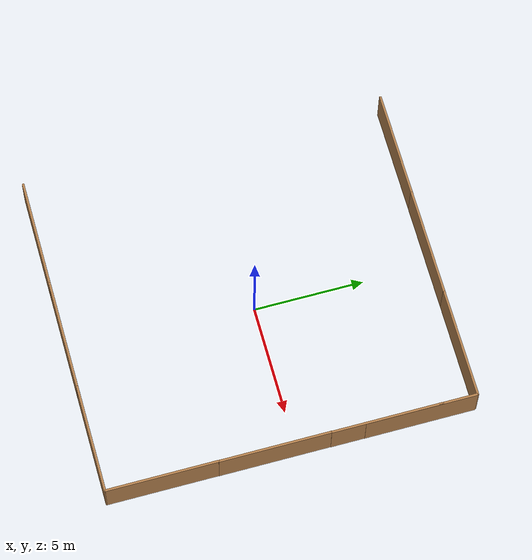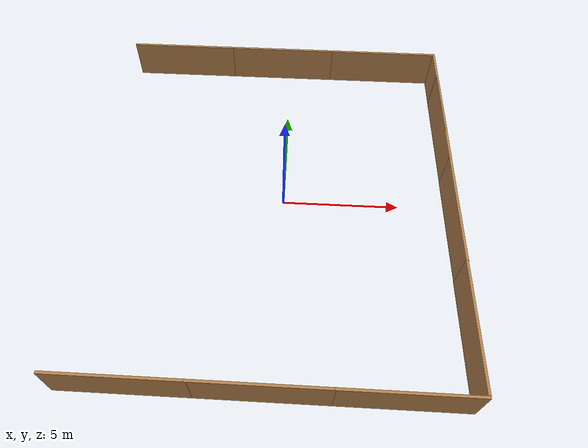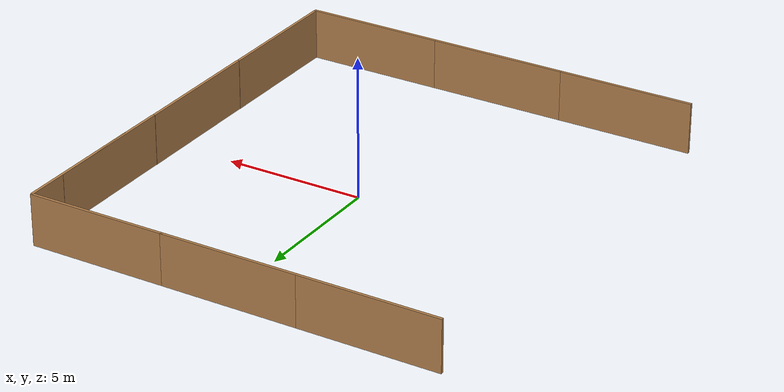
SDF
<sdf version="1.7">
 <world name="default">
  <model name="fence_clone_6_clone_clone_2">
   <static>1</static>
   <link name="link">
    <pose>0 0 0.915 0 -0 0</pose>
    <collision name="collision"><geometry><box><size>0.1 5 1.83</size></box></geometry></collision>
    <visual name="visual">
     <cast_shadows>0</cast_shadows>
     <geometry><box><size>0.1 5 1.83</size></box></geometry>
     <material>
      <script>
       <uri>https://fuel.ignitionrobotics.org/1.0/athackst/models/fence/2/files/materials/scripts</uri>
       <uri>https://fuel.ignitionrobotics.org/1.0/athackst/models/fence/2/files/materials/textures</uri>
       <name>Fence/WoodBoarding</name>
      </script>
     </material>
    </visual>
   </link>
   <pose>-5.31329 -8.50005 0 0 -0 1.57076</pose>
  </model>
  <model name="fence_clone_6_clone_clone_3">
   <static>1</static>
   <link name="link">
    <pose>0 0 0.915 0 -0 0</pose>
    <collision name="collision"><geometry><box><size>0.1 5 1.83</size></box></geometry></collision>
    <visual name="visual">
     <cast_shadows>0</cast_shadows>
     <geometry><box><size>0.1 5 1.83</size></box></geometry>
     <material>
      <script>
       <uri>https://fuel.ignitionrobotics.org/1.0/athackst/models/fence/2/files/materials/scripts</uri>
       <uri>https://fuel.ignitionrobotics.org/1.0/athackst/models/fence/2/files/materials/textures</uri>
       <name>Fence/WoodBoarding</name>
      </script>
     </material>
    </visual>
   </link>
   <pose>-0.412046 -8.50003 0 0 -0 1.57076</pose>
  </model>
  <model name="fence_clone_6_clone_clone_4">
   <static>1</static>
   <link name="link">
    <pose>0 0 0.915 0 -0 0</pose>
    <collision name="collision"><geometry><box><size>0.1 5 1.83</size></box></geometry></collision>
    <visual name="visual">
     <cast_shadows>0</cast_shadows>
     <geometry><box><size>0.1 5 1.83</size></box></geometry>
     <material>
      <script>
       <uri>https://fuel.ignitionrobotics.org/1.0/athackst/models/fence/2/files/materials/scripts</uri>
       <uri>https://fuel.ignitionrobotics.org/1.0/athackst/models/fence/2/files/materials/textures</uri>
       <name>Fence/WoodBoarding</name>
      </script>
     </material>
    </visual>
   </link>
   <pose>4.54305 -8.5 0 0 -0 1.57076</pose>
  </model>
  <model name="fence_clone_6_clone_clone_10_clone_clone_1">
   <static>1</static>
   <link name="link">
    <pose>0 0 0.915 0 -0 0</pose>
    <collision name="collision"><geometry><box><size>0.1 5 1.83</size></box></geometry></collision>
    <visual name="visual">
     <cast_shadows>0</cast_shadows>
     <geometry><box><size>0.1 5 1.83</size></box></geometry>
     <material>
      <script>
       <uri>https://fuel.ignitionrobotics.org/1.0/athackst/models/fence/2/files/materials/scripts</uri>
       <uri>https://fuel.ignitionrobotics.org/1.0/athackst/models/fence/2/files/materials/textures</uri>
       <name>Fence/WoodBoarding</name>
      </script>
     </material>
    </visual>
   </link>
   <pose>7 -6 0 0 -0 3.14159</pose>
  </model>
  <model name="fence_clone_6_clone_clone_10_clone_clone_3">
   <static>1</static>
   <link name="link">
    <pose>0 0 0.915 0 -0 0</pose>
    <collision name="collision"><geometry><box><size>0.1 5 1.83</size></box></geometry></collision>
    <visual name="visual">
     <cast_shadows>0</cast_shadows>
     <geometry><box><size>0.1 5 1.83</size></box></geometry>
     <material>
      <script>
       <uri>https://fuel.ignitionrobotics.org/1.0/athackst/models/fence/2/files/materials/scripts</uri>
       <uri>https://fuel.ignitionrobotics.org/1.0/athackst/models/fence/2/files/materials/textures</uri>
       <name>Fence/WoodBoarding</name>
      </script>
     </material>
    </visual>
   </link>
   <pose>7.00832 -1.02384 0 0 0 -3.14159</pose>
  </model>
  <model name="fence_clone_6_clone_clone_10_clone_clone_4">
   <static>1</static>
   <link name="link">
    <pose>0 0 0.915 0 -0 0</pose>
    <collision name="collision"><geometry><box><size>0.1 5 1.83</size></box></geometry></collision>
    <visual name="visual">
     <cast_shadows>0</cast_shadows>
     <geometry><box><size>0.1 5 1.83</size></box></geometry>
     <material>
      <script>
       <uri>https://fuel.ignitionrobotics.org/1.0/athackst/models/fence/2/files/materials/scripts</uri>
       <uri>https://fuel.ignitionrobotics.org/1.0/athackst/models/fence/2/files/materials/textures</uri>
       <name>Fence/WoodBoarding</name>
      </script>
     </material>
    </visual>
   </link>
   <pose>7.01765 3.9664 -0 0 0 -3.14159</pose>
  </model>
  <model name="fence_clone_6_clone_clone_10_clone_clone_5">
   <static>1</static>
   <link name="link">
    <pose>0 0 0.915 0 -0 0</pose>
    <collision name="collision"><geometry><box><size>0.1 5 1.83</size></box></geometry></collision>
    <visual name="visual">
     <cast_shadows>0</cast_shadows>
     <geometry><box><size>0.1 5 1.83</size></box></geometry>
     <material>
      <script>
       <uri>https://fuel.ignitionrobotics.org/1.0/athackst/models/fence/2/files/materials/scripts</uri>
       <uri>https://fuel.ignitionrobotics.org/1.0/athackst/models/fence/2/files/materials/textures</uri>
       <name>Fence/WoodBoarding</name>
      </script>
     </material>
    </visual>
   </link>
   <pose>7.02194 5.50018 0 0 0 -3.14159</pose>
  </model>
  <model name="fence_clone_6_clone_clone_10_clone_clone_6_clone_clone_4">
   <static>1</static>
   <link name="link">
    <pose>0 0 0.915 0 -0 0</pose>
    <collision name="collision"><geometry><box><size>0.1 5 1.83</size></box></geometry></collision>
    <visual name="visual">
     <cast_shadows>0</cast_shadows>
     <geometry><box><size>0.1 5 1.83</size></box></geometry>
     <material>
      <script>
       <uri>https://fuel.ignitionrobotics.org/1.0/athackst/models/fence/2/files/materials/scripts</uri>
       <uri>https://fuel.ignitionrobotics.org/1.0/athackst/models/fence/2/files/materials/textures</uri>
       <name>Fence/WoodBoarding</name>
      </script>
     </material>
    </visual>
   </link>
   <pose>4.55 8 0 0 0 -1.57077</pose>
  </model>
  <model name="fence_clone_6_clone_clone_10_clone_clone_6_clone_clone_5">
   <static>1</static>
   <link name="link">
    <pose>0 0 0.915 0 -0 0</pose>
    <collision name="collision"><geometry><box><size>0.1 5 1.83</size></box></geometry></collision>
    <visual name="visual">
     <cast_shadows>0</cast_shadows>
     <geometry><box><size>0.1 5 1.83</size></box></geometry>
     <material>
      <script>
       <uri>https://fuel.ignitionrobotics.org/1.0/athackst/models/fence/2/files/materials/scripts</uri>
       <uri>https://fuel.ignitionrobotics.org/1.0/athackst/models/fence/2/files/materials/textures</uri>
       <name>Fence/WoodBoarding</name>
      </script>
     </material>
    </visual>
   </link>
   <pose>-0.372281 8 0 0 0 -1.57077</pose>
  </model>
  <model name="fence_clone_6_clone_clone_10_clone_clone_6_clone_clone_6">
   <static>1</static>
   <link name="link">
    <pose>0 0 0.915 0 -0 0</pose>
    <collision name="collision"><geometry><box><size>0.1 5 1.83</size></box></geometry></collision>
    <visual name="visual">
     <cast_shadows>0</cast_shadows>
     <geometry><box><size>0.1 5 1.83</size></box></geometry>
     <material>
      <script>
       <uri>https://fuel.ignitionrobotics.org/1.0/athackst/models/fence/2/files/materials/scripts</uri>
       <uri>https://fuel.ignitionrobotics.org/1.0/athackst/models/fence/2/files/materials/textures</uri>
       <name>Fence/WoodBoarding</name>
      </script>
     </material>
    </visual>
   </link>
   <pose>-5.26157 8 0 0 0 -1.57078</pose>
  </model>
 </world>
</sdf>
